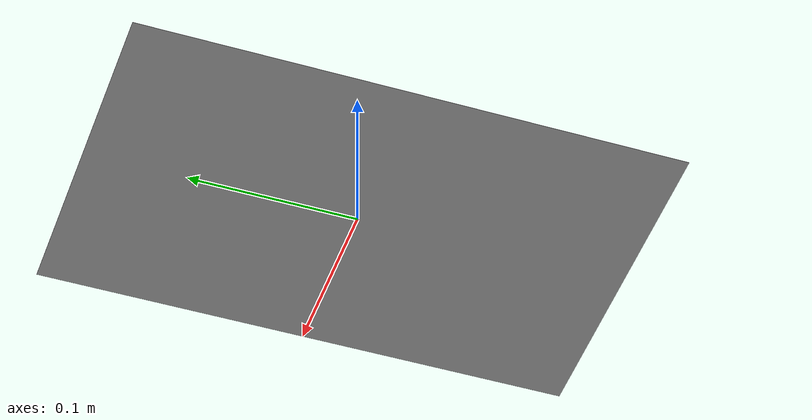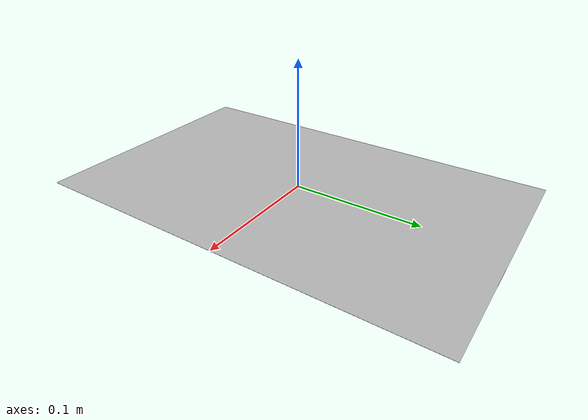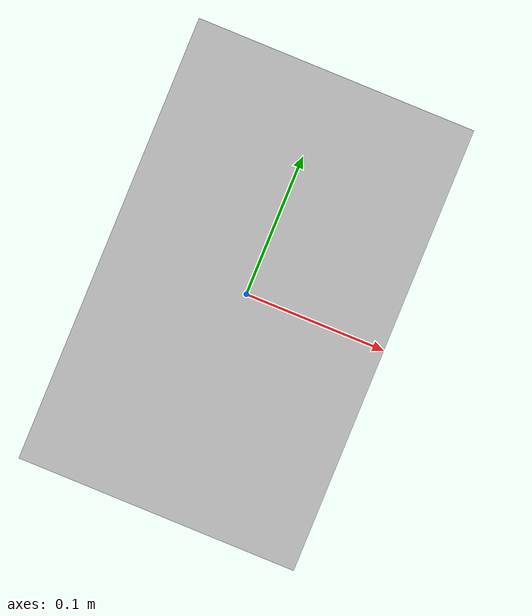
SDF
<?xml version="1.0" ?>
<sdf version="1.5">
  <model name="silhouette1">
    <static>true</static>
    <link name="link">
      <collision name="collision">
        <geometry>
          <box>
           <size>0.2 0.32 0.0001</size>
          </box>
        </geometry>
      </collision>

      <visual name="visual">
        <geometry>
          <box>
           <size>0.2 0.32 0.0001</size>
          </box>
        </geometry>
        <material>
          <script>
            <uri>model://1stSilhouette/materials/scripts</uri>
            <uri>model://1stSilhouette/materials/textures</uri>
            <name>silhouetteMat/Diffuse</name>
          </script>
        </material>
      </visual>
    </link>
  </model>
</sdf>
